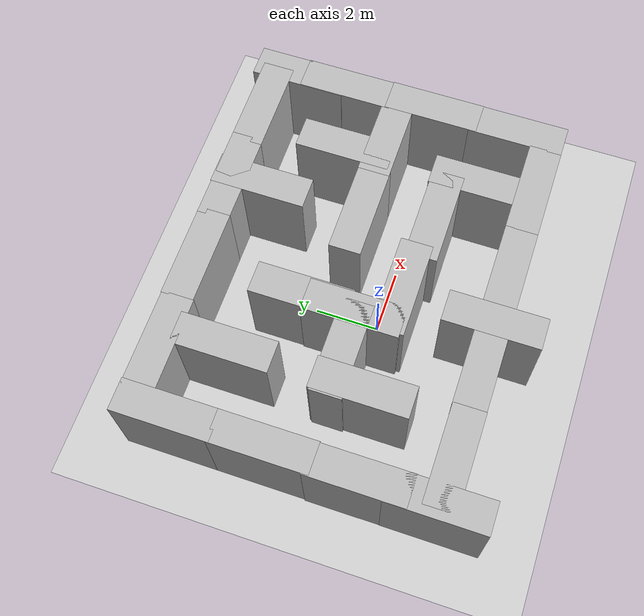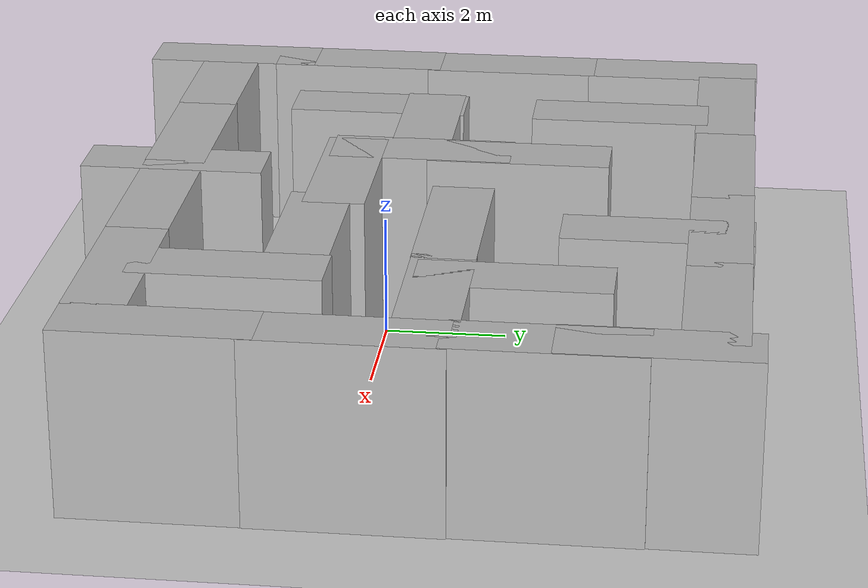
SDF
<sdf version="1.6">
 <world name="default">
  <light name="sun" type="directional">
   <pose>0 0 10 0 -0 0</pose>
   <diffuse>0.8 0.8 0.8 1</diffuse>
   <specular>0.2 0.2 0.2 1</specular>
   <attenuation>
    <range>1000</range>
    <constant>0.9</constant>
    <linear>0.01</linear>
    <quadratic>0.001</quadratic>
   </attenuation>
   <direction>-0.5 0.1 -0.9</direction>
  </light>
  <model name="ground_plane">
   <static>1</static>
   <link name="link">
    <collision name="collision">
     <geometry><plane><normal>0 0 1</normal><size>100 100</size></plane></geometry>
     <surface>
      <contact><collide_bitmask>65535</collide_bitmask></contact>
      <friction><ode><mu>100</mu><mu2>50</mu2></ode></friction>
     </surface>
    </collision>
    <visual name="visual">
     <cast_shadows>0</cast_shadows>
     <geometry><plane><normal>0 0 1</normal><size>100 100</size></plane></geometry>
     <material>
      <script><uri>file://media/materials/scripts/gazebo.material</uri><name>Gazebo/Grey</name></script>
     </material>
    </visual>
   </link>
  </model>
  <physics name="default_physics" default="0" type="ode">
   <real_time_update_rate>1000</real_time_update_rate>
   <max_step_size>0.001</max_step_size>
   <real_time_factor>1</real_time_factor>
   <ode>
    <solver>
     <type>quick</type>
     <iters>150</iters>
     <precon_iters>0</precon_iters>
     <sor>1.4</sor>
     <use_dynamic_moi_rescaling>1</use_dynamic_moi_rescaling>
    </solver>
    <constraints>
     <cfm>1e-05</cfm>
     <erp>0.2</erp>
     <contact_max_correcting_vel>2000</contact_max_correcting_vel>
     <contact_surface_layer>0.01</contact_surface_layer>
    </constraints>
   </ode>
  </physics>
  <scene><ambient>0.4 0.4 0.4 1</ambient><background>0.7 0.7 0.7 1</background><shadows>1</shadows></scene>
  <gravity>0 0 -9.8</gravity>
  <magnetic_field>6e-06 2.3e-05 -4.2e-05</magnetic_field>
  <atmosphere type="adiabatic"/>
  <spherical_coordinates>
   <surface_model>EARTH_WGS84</surface_model>
   <latitude_deg>0</latitude_deg>
   <longitude_deg>0</longitude_deg>
   <elevation>0</elevation>
   <heading_deg>0</heading_deg>
  </spherical_coordinates>
  <model name="brick_box_3x1x3">
   <static>1</static>
   <link name="chassis">
    <pose>0 0 1.5 0 -0 0</pose>
    <collision name="collision"><geometry><box><size>3 1 3</size></box></geometry></collision>
    <visual name="visual">
     <geometry><mesh><uri>model://brick_box_3x1x3/meshes/simple_box.dae</uri><scale>3 1 3</scale></mesh></geometry>
     <material>
      <script>
       <uri>model://brick_box_3x1x3/materials/scripts</uri>
       <uri>model://brick_box_3x1x3/materials/textures</uri>
       <name>BrickBox/Diffuse</name>
      </script>
     </material>
    </visual>
   </link>
   <pose>-3.52065 5.5126 0 0 -0 0</pose>
  </model>
  <model name="brick_box_3x1x3_0">
   <static>1</static>
   <link name="chassis">
    <pose>0 0 1.5 0 -0 0</pose>
    <collision name="collision"><geometry><box><size>3 1 3</size></box></geometry></collision>
    <visual name="visual">
     <geometry><mesh><uri>model://brick_box_3x1x3/meshes/simple_box.dae</uri><scale>3 1 3</scale></mesh></geometry>
     <material>
      <script>
       <uri>model://brick_box_3x1x3/materials/scripts</uri>
       <uri>model://brick_box_3x1x3/materials/textures</uri>
       <name>BrickBox/Diffuse</name>
      </script>
     </material>
    </visual>
   </link>
   <pose>-0.57162 5.5347 0 0 -0 0</pose>
  </model>
  <model name="brick_box_3x1x3_1">
   <static>1</static>
   <link name="chassis">
    <pose>0 0 1.5 0 -0 0</pose>
    <collision name="collision"><geometry><box><size>3 1 3</size></box></geometry></collision>
    <visual name="visual">
     <geometry><mesh><uri>model://brick_box_3x1x3/meshes/simple_box.dae</uri><scale>3 1 3</scale></mesh></geometry>
     <material>
      <script>
       <uri>model://brick_box_3x1x3/materials/scripts</uri>
       <uri>model://brick_box_3x1x3/materials/textures</uri>
       <name>BrickBox/Diffuse</name>
      </script>
     </material>
    </visual>
   </link>
   <pose>2.26884 5.53862 0 0 -0 0</pose>
  </model>
  <model name="brick_box_3x1x3_2">
   <static>1</static>
   <link name="chassis">
    <pose>0 0 1.5 0 -0 0</pose>
    <collision name="collision"><geometry><box><size>3 1 3</size></box></geometry></collision>
    <visual name="visual">
     <geometry><mesh><uri>model://brick_box_3x1x3/meshes/simple_box.dae</uri><scale>3 1 3</scale></mesh></geometry>
     <material>
      <script>
       <uri>model://brick_box_3x1x3/materials/scripts</uri>
       <uri>model://brick_box_3x1x3/materials/textures</uri>
       <name>BrickBox/Diffuse</name>
      </script>
     </material>
    </visual>
   </link>
   <pose>5.09728 5.53806 0 0 -0 0</pose>
  </model>
  <model name="brick_box_3x1x3_3">
   <static>1</static>
   <link name="chassis">
    <pose>0 0 1.5 0 -0 0</pose>
    <collision name="collision"><geometry><box><size>3 1 3</size></box></geometry></collision>
    <visual name="visual">
     <geometry><mesh><uri>model://brick_box_3x1x3/meshes/simple_box.dae</uri><scale>3 1 3</scale></mesh></geometry>
     <material>
      <script>
       <uri>model://brick_box_3x1x3/materials/scripts</uri>
       <uri>model://brick_box_3x1x3/materials/textures</uri>
       <name>BrickBox/Diffuse</name>
      </script>
     </material>
    </visual>
   </link>
   <pose>-4.11846 -3.47916 0 0 -0 0</pose>
  </model>
  <model name="brick_box_3x1x3_4">
   <static>1</static>
   <link name="chassis">
    <pose>0 0 1.5 0 -0 0</pose>
    <collision name="collision"><geometry><box><size>3 1 3</size></box></geometry></collision>
    <visual name="visual">
     <geometry><mesh><uri>model://brick_box_3x1x3/meshes/simple_box.dae</uri><scale>3 1 3</scale></mesh></geometry>
     <material>
      <script>
       <uri>model://brick_box_3x1x3/materials/scripts</uri>
       <uri>model://brick_box_3x1x3/materials/textures</uri>
       <name>BrickBox/Diffuse</name>
      </script>
     </material>
    </visual>
   </link>
   <pose>-1.18785 -3.46795 0 0 -0 0</pose>
  </model>
  <model name="brick_box_3x1x3_5">
   <static>1</static>
   <link name="chassis">
    <pose>0 0 1.5 0 -0 0</pose>
    <collision name="collision"><geometry><box><size>3 1 3</size></box></geometry></collision>
    <visual name="visual">
     <geometry><mesh><uri>model://brick_box_3x1x3/meshes/simple_box.dae</uri><scale>3 1 3</scale></mesh></geometry>
     <material>
      <script>
       <uri>model://brick_box_3x1x3/materials/scripts</uri>
       <uri>model://brick_box_3x1x3/materials/textures</uri>
       <name>BrickBox/Diffuse</name>
      </script>
     </material>
    </visual>
   </link>
   <pose>1.73412 -3.4568 0 0 -0 0</pose>
  </model>
  <model name="brick_box_3x1x3_6">
   <static>1</static>
   <link name="chassis">
    <pose>0 0 1.5 0 -0 0</pose>
    <collision name="collision"><geometry><box><size>3 1 3</size></box></geometry></collision>
    <visual name="visual">
     <geometry><mesh><uri>model://brick_box_3x1x3/meshes/simple_box.dae</uri><scale>3 1 3</scale></mesh></geometry>
     <material>
      <script>
       <uri>model://brick_box_3x1x3/materials/scripts</uri>
       <uri>model://brick_box_3x1x3/materials/textures</uri>
       <name>BrickBox/Diffuse</name>
      </script>
     </material>
    </visual>
   </link>
   <pose>4.71956 -3.45367 0 0 -0 0</pose>
  </model>
  <model name="brick_box_3x1x3_7">
   <static>1</static>
   <link name="chassis">
    <pose>0 0 1.5 0 -0 0</pose>
    <collision name="collision"><geometry><box><size>3 1 3</size></box></geometry></collision>
    <visual name="visual">
     <geometry><mesh><uri>model://brick_box_3x1x3/meshes/simple_box.dae</uri><scale>3 1 3</scale></mesh></geometry>
     <material>
      <script>
       <uri>model://brick_box_3x1x3/materials/scripts</uri>
       <uri>model://brick_box_3x1x3/materials/textures</uri>
       <name>BrickBox/Diffuse</name>
      </script>
     </material>
    </visual>
   </link>
   <pose>-5.35847 4.53615 0 0 -0 1.5708</pose>
  </model>
  <model name="brick_box_3x1x3_7_clone">
   <static>1</static>
   <link name="chassis">
    <pose>0 0 1.5 0 -0 0</pose>
    <collision name="collision"><geometry><box><size>3 1 3</size></box></geometry></collision>
    <visual name="visual">
     <geometry><mesh><uri>model://brick_box_3x1x3/meshes/simple_box.dae</uri><scale>3 1 3</scale></mesh></geometry>
     <material>
      <script>
       <uri>model://brick_box_3x1x3/materials/scripts</uri>
       <uri>model://brick_box_3x1x3/materials/textures</uri>
       <name>BrickBox/Diffuse</name>
      </script>
     </material>
    </visual>
   </link>
   <pose>-5.35905 1.634 0 0 -0 1.5708</pose>
  </model>
  <model name="brick_box_3x1x3_7_clone_0">
   <static>1</static>
   <link name="chassis">
    <pose>0 0 1.5 0 -0 0</pose>
    <collision name="collision"><geometry><box><size>3 1 3</size></box></geometry></collision>
    <visual name="visual">
     <geometry><mesh><uri>model://brick_box_3x1x3/meshes/simple_box.dae</uri><scale>3 1 3</scale></mesh></geometry>
     <material>
      <script>
       <uri>model://brick_box_3x1x3/materials/scripts</uri>
       <uri>model://brick_box_3x1x3/materials/textures</uri>
       <name>BrickBox/Diffuse</name>
      </script>
     </material>
    </visual>
   </link>
   <pose>-5.38646 -1.1489 0 0 -0 1.5708</pose>
  </model>
  <model name="brick_box_3x1x3_7_clone_1">
   <static>1</static>
   <link name="chassis">
    <pose>0 0 1.5 0 -0 0</pose>
    <collision name="collision"><geometry><box><size>3 1 3</size></box></geometry></collision>
    <visual name="visual">
     <geometry><mesh><uri>model://brick_box_3x1x3/meshes/simple_box.dae</uri><scale>3 1 3</scale></mesh></geometry>
     <material>
      <script>
       <uri>model://brick_box_3x1x3/materials/scripts</uri>
       <uri>model://brick_box_3x1x3/materials/textures</uri>
       <name>BrickBox/Diffuse</name>
      </script>
     </material>
    </visual>
   </link>
   <pose>-5.39593 -3.44513 0 0 -0 1.5708</pose>
  </model>
  <model name="brick_box_3x1x3_7_clone_2">
   <static>1</static>
   <link name="chassis">
    <pose>0 0 1.5 0 -0 0</pose>
    <collision name="collision"><geometry><box><size>3 1 3</size></box></geometry></collision>
    <visual name="visual">
     <geometry><mesh><uri>model://brick_box_3x1x3/meshes/simple_box.dae</uri><scale>3 1 3</scale></mesh></geometry>
     <material>
      <script>
       <uri>model://brick_box_3x1x3/materials/scripts</uri>
       <uri>model://brick_box_3x1x3/materials/textures</uri>
       <name>BrickBox/Diffuse</name>
      </script>
     </material>
    </visual>
   </link>
   <pose>6.67679 -2.45008 0 0 -0 1.5708</pose>
  </model>
  <model name="brick_box_3x1x3_7_clone_3">
   <static>1</static>
   <link name="chassis">
    <pose>0 0 1.5 0 -0 0</pose>
    <collision name="collision"><geometry><box><size>3 1 3</size></box></geometry></collision>
    <visual name="visual">
     <geometry><mesh><uri>model://brick_box_3x1x3/meshes/simple_box.dae</uri><scale>3 1 3</scale></mesh></geometry>
     <material>
      <script>
       <uri>model://brick_box_3x1x3/materials/scripts</uri>
       <uri>model://brick_box_3x1x3/materials/textures</uri>
       <name>BrickBox/Diffuse</name>
      </script>
     </material>
    </visual>
   </link>
   <pose>6.68812 0.301864 0 0 -0 1.5708</pose>
  </model>
  <model name="brick_box_3x1x3_7_clone_4">
   <static>1</static>
   <link name="chassis">
    <pose>0 0 1.5 0 -0 0</pose>
    <collision name="collision"><geometry><box><size>3 1 3</size></box></geometry></collision>
    <visual name="visual">
     <geometry><mesh><uri>model://brick_box_3x1x3/meshes/simple_box.dae</uri><scale>3 1 3</scale></mesh></geometry>
     <material>
      <script>
       <uri>model://brick_box_3x1x3/materials/scripts</uri>
       <uri>model://brick_box_3x1x3/materials/textures</uri>
       <name>BrickBox/Diffuse</name>
      </script>
     </material>
    </visual>
   </link>
   <pose>6.66392 3.15487 0 0 -0 1.5708</pose>
  </model>
  <model name="brick_box_3x1x3_7_clone_5">
   <static>1</static>
   <link name="chassis">
    <pose>0 0 1.5 0 -0 0</pose>
    <collision name="collision"><geometry><box><size>3 1 3</size></box></geometry></collision>
    <visual name="visual">
     <geometry><mesh><uri>model://brick_box_3x1x3/meshes/simple_box.dae</uri><scale>3 1 3</scale></mesh></geometry>
     <material>
      <script>
       <uri>model://brick_box_3x1x3/materials/scripts</uri>
       <uri>model://brick_box_3x1x3/materials/textures</uri>
       <name>BrickBox/Diffuse</name>
      </script>
     </material>
    </visual>
   </link>
   <pose>6.64373 4.76357 0 0 -0 1.5708</pose>
  </model>
  <model name="brick_box_3x1x3_7_clone_6">
   <static>1</static>
   <link name="chassis">
    <pose>0 0 1.5 0 -0 0</pose>
    <collision name="collision"><geometry><box><size>3 1 3</size></box></geometry></collision>
    <visual name="visual">
     <geometry><mesh><uri>model://brick_box_3x1x3/meshes/simple_box.dae</uri><scale>3 1 3</scale></mesh></geometry>
     <material>
      <script>
       <uri>model://brick_box_3x1x3/materials/scripts</uri>
       <uri>model://brick_box_3x1x3/materials/textures</uri>
       <name>BrickBox/Diffuse</name>
      </script>
     </material>
    </visual>
   </link>
   <pose>-2.95718 3.71669 0 0 -0 1.5708</pose>
  </model>
  <model name="brick_box_3x1x3_7_clone_7">
   <static>1</static>
   <link name="chassis">
    <pose>0 0 1.5 0 -0 0</pose>
    <collision name="collision"><geometry><box><size>3 1 3</size></box></geometry></collision>
    <visual name="visual">
     <geometry><mesh><uri>model://brick_box_3x1x3/meshes/simple_box.dae</uri><scale>3 1 3</scale></mesh></geometry>
     <material>
      <script>
       <uri>model://brick_box_3x1x3/materials/scripts</uri>
       <uri>model://brick_box_3x1x3/materials/textures</uri>
       <name>BrickBox/Diffuse</name>
      </script>
     </material>
    </visual>
   </link>
   <pose>4.48051 -1.79307 0 0 -0 1.5708</pose>
  </model>
  <model name="brick_box_3x1x3_7_clone_8">
   <static>1</static>
   <link name="chassis">
    <pose>0 0 1.5 0 -0 0</pose>
    <collision name="collision"><geometry><box><size>3 1 3</size></box></geometry></collision>
    <visual name="visual">
     <geometry><mesh><uri>model://brick_box_3x1x3/meshes/simple_box.dae</uri><scale>3 1 3</scale></mesh></geometry>
     <material>
      <script>
       <uri>model://brick_box_3x1x3/materials/scripts</uri>
       <uri>model://brick_box_3x1x3/materials/textures</uri>
       <name>BrickBox/Diffuse</name>
      </script>
     </material>
    </visual>
   </link>
   <pose>0.158642 -3.4611 0 0 -0 1.5708</pose>
  </model>
  <model name="brick_box_3x1x3_5_clone">
   <static>1</static>
   <link name="chassis">
    <pose>0 0 1.5 0 -0 0</pose>
    <collision name="collision"><geometry><box><size>3 1 3</size></box></geometry></collision>
    <visual name="visual">
     <geometry><mesh><uri>model://brick_box_3x1x3/meshes/simple_box.dae</uri><scale>3 1 3</scale></mesh></geometry>
     <material>
      <script>
       <uri>model://brick_box_3x1x3/materials/scripts</uri>
       <uri>model://brick_box_3x1x3/materials/textures</uri>
       <name>BrickBox/Diffuse</name>
      </script>
     </material>
    </visual>
   </link>
   <pose>2.91976 -0.829763 0 0 -0 0</pose>
  </model>
  <model name="brick_box_3x1x3_5_clone_0">
   <static>1</static>
   <link name="chassis">
    <pose>0 0 1.5 0 -0 0</pose>
    <collision name="collision"><geometry><box><size>3 1 3</size></box></geometry></collision>
    <visual name="visual">
     <geometry><mesh><uri>model://brick_box_3x1x3/meshes/simple_box.dae</uri><scale>3 1 3</scale></mesh></geometry>
     <material>
      <script>
       <uri>model://brick_box_3x1x3/materials/scripts</uri>
       <uri>model://brick_box_3x1x3/materials/textures</uri>
       <name>BrickBox/Diffuse</name>
      </script>
     </material>
    </visual>
   </link>
   <pose>5.26968 1.40082 0 0 -0 0</pose>
  </model>
  <model name="brick_box_3x1x3_5_clone_1">
   <static>1</static>
   <link name="chassis">
    <pose>0 0 1.5 0 -0 0</pose>
    <collision name="collision"><geometry><box><size>3 1 3</size></box></geometry></collision>
    <visual name="visual">
     <geometry><mesh><uri>model://brick_box_3x1x3/meshes/simple_box.dae</uri><scale>3 1 3</scale></mesh></geometry>
     <material>
      <script>
       <uri>model://brick_box_3x1x3/materials/scripts</uri>
       <uri>model://brick_box_3x1x3/materials/textures</uri>
       <name>BrickBox/Diffuse</name>
      </script>
     </material>
    </visual>
   </link>
   <pose>2.42391 1.39235 0 0 -0 0</pose>
  </model>
  <model name="brick_box_3x1x3_5_clone_2">
   <static>1</static>
   <link name="chassis">
    <pose>0 0 1.5 0 -0 0</pose>
    <collision name="collision"><geometry><box><size>3 1 3</size></box></geometry></collision>
    <visual name="visual">
     <geometry><mesh><uri>model://brick_box_3x1x3/meshes/simple_box.dae</uri><scale>3 1 3</scale></mesh></geometry>
     <material>
      <script>
       <uri>model://brick_box_3x1x3/materials/scripts</uri>
       <uri>model://brick_box_3x1x3/materials/textures</uri>
       <name>BrickBox/Diffuse</name>
      </script>
     </material>
    </visual>
   </link>
   <pose>0.33966 -0.597127 0 0 -0 0</pose>
  </model>
  <model name="brick_box_3x1x3_7_clone_6_clone">
   <static>1</static>
   <link name="chassis">
    <pose>0 0 1.5 0 -0 0</pose>
    <collision name="collision"><geometry><box><size>3 1 3</size></box></geometry></collision>
    <visual name="visual">
     <geometry><mesh><uri>model://brick_box_3x1x3/meshes/simple_box.dae</uri><scale>3 1 3</scale></mesh></geometry>
     <material>
      <script>
       <uri>model://brick_box_3x1x3/materials/scripts</uri>
       <uri>model://brick_box_3x1x3/materials/textures</uri>
       <name>BrickBox/Diffuse</name>
      </script>
     </material>
    </visual>
   </link>
   <pose>-0.773277 0.522106 0 0 -0 1.5708</pose>
  </model>
  <model name="brick_box_3x1x3_7_clone_6_clone_0">
   <static>1</static>
   <link name="chassis">
    <pose>0 0 1.5 0 -0 0</pose>
    <collision name="collision"><geometry><box><size>3 1 3</size></box></geometry></collision>
    <visual name="visual">
     <geometry><mesh><uri>model://brick_box_3x1x3/meshes/simple_box.dae</uri><scale>3 1 3</scale></mesh></geometry>
     <material>
      <script>
       <uri>model://brick_box_3x1x3/materials/scripts</uri>
       <uri>model://brick_box_3x1x3/materials/textures</uri>
       <name>BrickBox/Diffuse</name>
      </script>
     </material>
    </visual>
   </link>
   <pose>4.48075 2.52322 0 0 -0 1.5708</pose>
  </model>
  <model name="brick_box_3x1x3_7_clone_6_clone_1">
   <static>1</static>
   <link name="chassis">
    <pose>0 0 1.5 0 -0 0</pose>
    <collision name="collision"><geometry><box><size>3 1 3</size></box></geometry></collision>
    <visual name="visual">
     <geometry><mesh><uri>model://brick_box_3x1x3/meshes/simple_box.dae</uri><scale>3 1 3</scale></mesh></geometry>
     <material>
      <script>
       <uri>model://brick_box_3x1x3/materials/scripts</uri>
       <uri>model://brick_box_3x1x3/materials/textures</uri>
       <name>BrickBox/Diffuse</name>
      </script>
     </material>
    </visual>
   </link>
   <pose>2.40596 4.56508 0 0 -0 1.5708</pose>
  </model>
  <model name="brick_box_3x1x3_7_clone_6_clone_2">
   <static>1</static>
   <link name="chassis">
    <pose>0 0 1.5 0 -0 0</pose>
    <collision name="collision"><geometry><box><size>3 1 3</size></box></geometry></collision>
    <visual name="visual">
     <geometry><mesh><uri>model://brick_box_3x1x3/meshes/simple_box.dae</uri><scale>3 1 3</scale></mesh></geometry>
     <material>
      <script>
       <uri>model://brick_box_3x1x3/materials/scripts</uri>
       <uri>model://brick_box_3x1x3/materials/textures</uri>
       <name>BrickBox/Diffuse</name>
      </script>
     </material>
    </visual>
   </link>
   <pose>-0.735339 2.15896 0 0 -0 1.5708</pose>
  </model>
  <model name="brick_box_3x1x3_4_clone">
   <static>1</static>
   <link name="chassis">
    <pose>0 0 1.5 0 -0 0</pose>
    <collision name="collision"><geometry><box><size>3 1 3</size></box></geometry></collision>
    <visual name="visual">
     <geometry><mesh><uri>model://brick_box_3x1x3/meshes/simple_box.dae</uri><scale>3 1 3</scale></mesh></geometry>
     <material>
      <script>
       <uri>model://brick_box_3x1x3/materials/scripts</uri>
       <uri>model://brick_box_3x1x3/materials/textures</uri>
       <name>BrickBox/Diffuse</name>
      </script>
     </material>
    </visual>
   </link>
   <pose>-2.04704 0.466322 0 0 -0 0</pose>
  </model>
  <model name="brick_box_3x1x3_7_clone_0_clone">
   <static>1</static>
   <link name="chassis">
    <pose>0 0 1.5 0 -0 0</pose>
    <collision name="collision"><geometry><box><size>3 1 3</size></box></geometry></collision>
    <visual name="visual">
     <geometry><mesh><uri>model://brick_box_3x1x3/meshes/simple_box.dae</uri><scale>3 1 3</scale></mesh></geometry>
     <material>
      <script>
       <uri>model://brick_box_3x1x3/materials/scripts</uri>
       <uri>model://brick_box_3x1x3/materials/textures</uri>
       <name>BrickBox/Diffuse</name>
      </script>
     </material>
    </visual>
   </link>
   <pose>-2.98788 -0.472766 0 0 -0 1.5708</pose>
  </model>
 </world>
</sdf>
